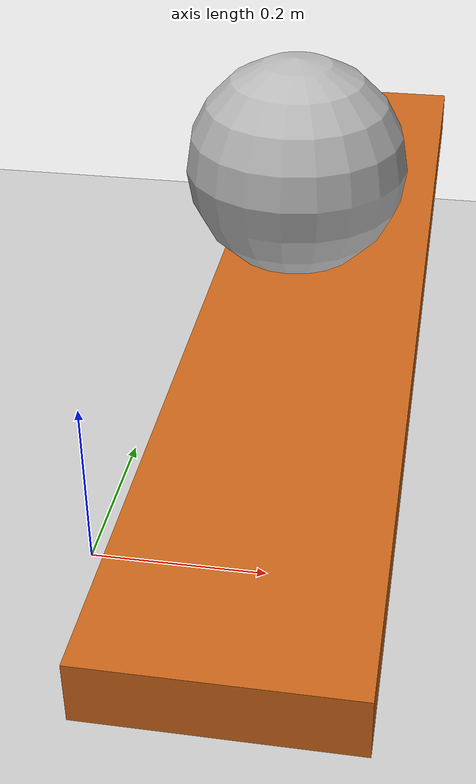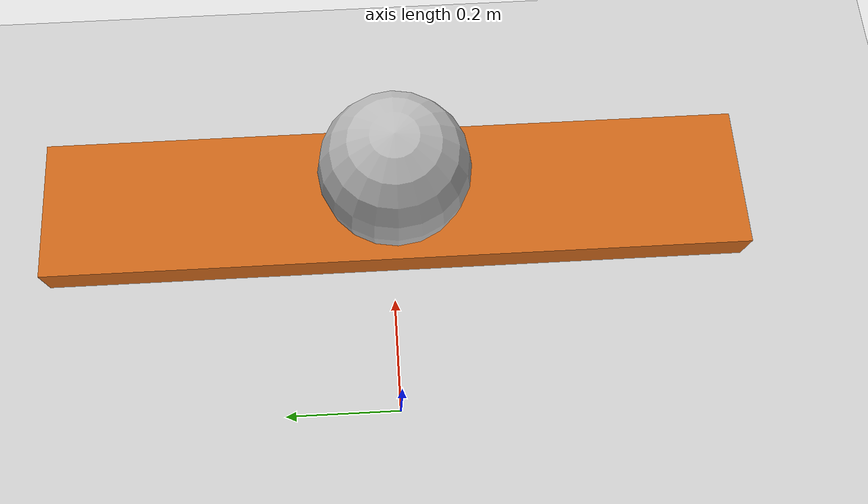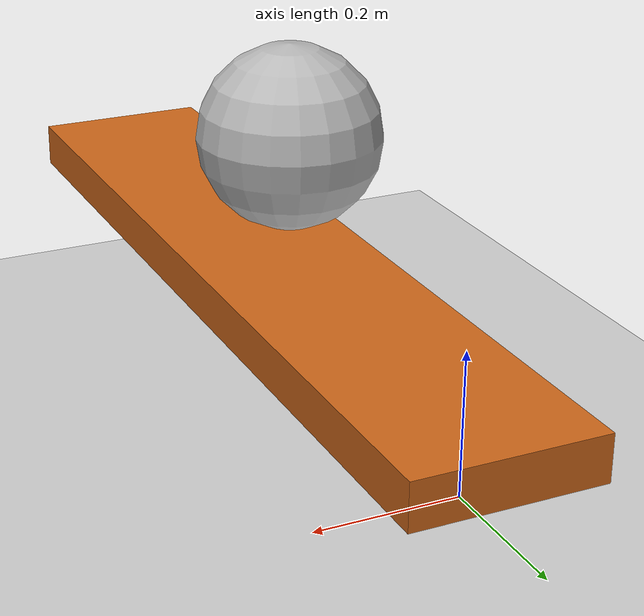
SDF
<?xml version="1.0" ?>
<sdf version="1.5">
    <world name="default">

        <physics type="ode">
        <max_step_size>0.001</max_step_size>
        <real_time_factor>1</real_time_factor>
        <real_time_update_rate>1000</real_time_update_rate>
        <gravity>0 0 -9.81</gravity>
            <ode>
                <solver>
                <type>quick</type>
                <iters>50</iters>
                <sor>1.3</sor>
                </solver>
                <constraints>
                <cfm>0.0</cfm>
                <erp>0.2</erp>
                <contact_max_correcting_vel>10.0</contact_max_correcting_vel>
                <contact_surface_layer>0.001</contact_surface_layer>
                </constraints>
            </ode>
        </physics>

        <scene>
        <sky>
            <clouds>
                <speed>12</speed>
            </clouds>
        </sky>
        </scene>
        <!-- A global light source -->
        <include>
            <uri>model://sun</uri>
        </include>
        <!-- A ground plane -->
        <include>
            <uri>model://ground_plane</uri>
        </include>

        <!-- A global light source -->
        <model name="ball">
            <!-- Position and orientation -->
            <pose>0.23 0 0.5 0 0 0</pose>
            <link name="ball_link">
                <pose>0 0 0 0 0 0</pose> <!-- Pose relative to the model -->
                <inertial>
                    <mass>0.001</mass> <!-- Mass of the ball -->
                    <inertia>
                        <ixx>0.1</ixx> <!-- Inertia tensor components -->
                        <iyy>0.1</iyy>
                        <izz>0.1</izz>
                    </inertia>
                </inertial>
                <collision name="collision">
                <geometry>
                    <sphere>
                    <radius>0.1</radius> <!-- Sphere radius -->
                    </sphere>
                </geometry>
                <contact>
                    <ode>
                        <kp>10</kp> <!-- Contact stiffness -->
                        <kd>10</kd> <!-- Contact damping -->
                    </ode>
                </contact>
                <surface>
                    <friction>
                        <ode>
                        <mu>1.0</mu> <!-- Coefficient of friction -->
                        <mu2>1.0</mu2> <!-- Second friction parameter (optional) -->
                        </ode>
                    </friction>
                </surface>
                </collision>
                <visual name="visual">
                <geometry>
                    <sphere>
                    <radius>0.1</radius> <!-- Sphere radius -->
                    </sphere>
                </geometry>
                </visual>
            </link>
        </model>

        <model name="table_model">
            <pose>0.25 0 0.35 0 0 0</pose>
            <static>true</static>
            <link name="table_link">
                <collision name="collision">
                <geometry>
                    <box>
                    <size>0.2 1 0.05</size>
                    </box>
                </geometry>
                </collision>
                <visual name="visual">
                <geometry>
                    <box>
                    <size>0.2 1 0.05</size>
                    </box>
                </geometry>
                <material>
                    <ambient>0.8 0.4 0.1 1</ambient>
                </material>
                </visual>
            </link>
        </model>

        <!-- environment blocks, obstacles or stairs -->
        <model name="static_environment">
        <static>true</static>

        </model>

    </world>
</sdf>
